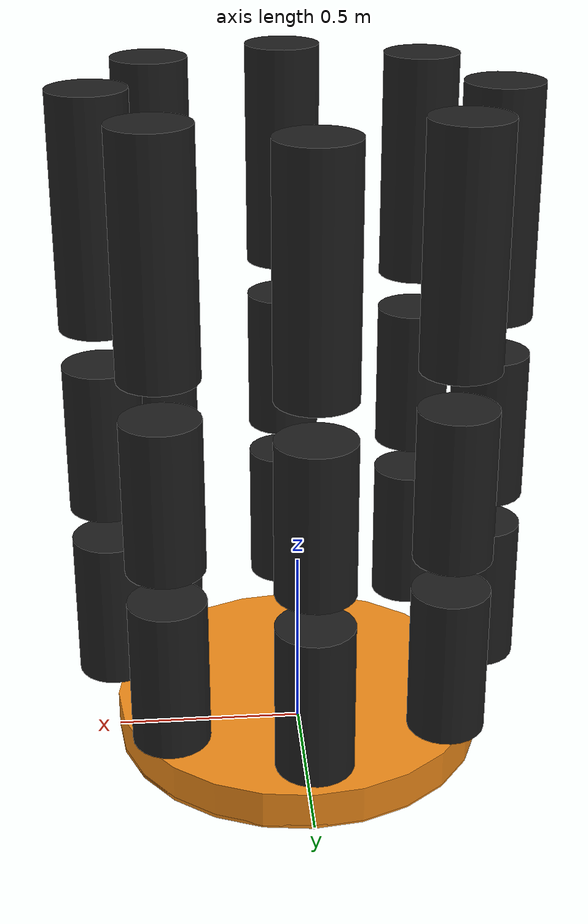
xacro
<?xml version="1.0"?>
<!-- Octapod -->
<robot xmlns:xacro="http://www.ros.org/wiki/xacro" name="spider">

  <!-- Constants for robot dimensions -->
  <xacro:property name="PI" value="3.1415926535897931"/>
  <xacro:property name="mass_chassis" value="0.4" /> <!-- arbitrary value for mass -->
  <xacro:property name="mass_link" value="0.1" /><!--quarter the mass of chassis -->
  <xacro:property name="mass_tactile" value="0.01" /> <!-- mass of the tactile dummy link -->
  <xacro:property name="radius_chassis" value="0.5" /> <!-- Square dimensions (widthxwidth) of beams -->
  <xacro:property name="height_chassis" value="0.1"/>  <!-- height of the cylinder that describes chasses -->
  <xacro:property name="radius_link" value="0.1" /> <!-- Link 1 -->
  <xacro:property name="height_link1_2" value="0.4" /> <!-- Link 2 -->
  <xacro:property name="height_link_1_2" value="0.4"/> <!--to adjust the error as I misspelled height_link1_2-->
  <xacro:property name="height_link_3" value="0.6" /> <!-- Link 3 -->
  <xacro:property name="axel_offset" value="0.01" /> <!-- Space btw top of beam and the each joint -->
  <xacro:property name="tactile_link" value="0.1"/><!--size of the tactile sensor-->
  <!-- Import all Gazebo-customization elements, including Gazebo colors -->
  <xacro:include filename="$(find spider_description)/urdf/spider.gazebo" />
  <!-- Import Rviz colors -->
  <xacro:include filename="$(find spider_description)/urdf/materials.xacro" />

  <!-- chassis -->
  <link name="chassis_dummy">
   <collision>
     <origin xyz="0 0 0" rpy="0 0 0"/>
      <geometry>
	<cylinder length="0.01" radius="${radius_chassis}"/>
      </geometry>
    </collision>

    <visual>
      <origin xyz="0 0 0" rpy="0 0 0"/>
      <geometry>
	<cylinder length="0.01" radius="${radius_chassis}"/>
        <!--mesh filename="package://spider_description/meshes/chassis_upper.dae"/ -->
      </geometry>
      <material name="orange"/>
    </visual>

    <inertial>
      <origin xyz="0 0 0" rpy="0 0 0"/>
      <mass value="${mass_chassis}"/>
      <inertia
	  ixx="${(mass_chassis*(3*(radius_chassis)**2+(height_chassis)**2))/2}" ixy="0.0" ixz="0.0"
	  iyy="${(mass_chassis*(3*(radius_chassis)**2+(height_chassis)**2))/2}" iyz="0.0"
	  izz="${(mass_chassis*(radius_chassis)**2)/2}"/>
    </inertial>

  </link>

  <link name="chassis">
    <collision>
      <origin xyz="0 0 ${height_chassis/2}" rpy="0 0 0"/>
      <geometry>
      	<cylinder length="${height_chassis}" radius="${radius_chassis}"/>
      </geometry>
      <surface>
       <contact>
        <collide_bitmask>0x001</collide_bitmask>
       </contact>
      </surface>
    </collision>

    <visual>
      <origin xyz="0 0 ${height_chassis/2}" rpy="0 0 0"/>
      <geometry>
	<cylinder length="${height_chassis}" radius="${radius_chassis}"/>
        <mesh filename="package://spider_description/meshes/chassis_upper.dae"/>
      </geometry>
      <material name="orange"/>
    </visual>

  </link>

  <joint name="joint_1" type="fixed">
    <parent link="chassis"/>
    <child link="chassis_dummy"/>
  </joint>

  <joint name="joint_1_1" type="revolute">
    <parent link="chassis"/>
    <child link="left_torso_1_1"/>
    <origin xyz="0 ${radius_chassis} ${height_chassis}" rpy="0 0 0"/>
    <axis xyz="0 0 1"/>
    <dynamics damping="0.7" friction="0.0"/>
    <limit effort="30" velocity="10.0" lower="-3.14" upper="3.14" />
    <safety_controller k_velocity="10" k_position="15" soft_lower_limit="-2.0" soft_upper_limit="2.5" />
  </joint>

  <!-- left_torso_1_1 -->
  <link name="left_torso_1_1">
    <collision>
      <origin xyz="0 0 ${height_chassis + 20*axel_offset}" rpy="0 0 0"/>
      <geometry>
	<cylinder length="${height_link_1_2}" radius="${radius_link}"/>
      </geometry>
      <surface>
       <contact>
        <collide_bitmask>0x010</collide_bitmask>
       </contact>
      </surface>
    </collision>

    <visual>
      <origin xyz="0 0 ${height_chassis + 20*axel_offset}" rpy="0 0 0"/>
      <geometry>
	<cylinder length="${height_link_1_2}" radius="${radius_link}"/>
      </geometry>
      <material name="black"/>
    </visual>

    <inertial>
      <origin xyz="0 0 ${height_chassis + 20*axel_offset}" rpy="0 0 0"/>
      <mass value="${mass_link}"/>
      <inertia
	  ixx="${(mass_link*(3*(radius_link)**2+(height_link_1_2)**2))/2}" ixy="0.0" ixz="0.0"
	  iyy="${(mass_link*(3*(radius_link)**2+(height_link_1_2)**2))/2}" iyz="0.0"
	  izz="${(mass_chassis*(radius_link)**2)/2}"/>
    </inertial>
  </link>

  <joint name="joint_1_2" type="revolute">
    <parent link="left_torso_1_1"/>
    <child link="left_torso_1_2"/>
    <origin xyz="0 0 ${height_link1_2}" rpy="0 0 0"/>
    <axis xyz="0 1 0"/>
    <dynamics damping="0.7" friction="0.0"/>
    <limit effort="30" velocity="10.0" lower="-3.14" upper="3.14" />
    <safety_controller k_velocity="10" k_position="15" soft_lower_limit="-2.0" soft_upper_limit="2.5" />
  </joint>

  <!-- left_torso_1_2-->
  <link name="left_torso_1_2">
    <collision>
      <origin xyz="0 0 ${height_link1_2 - axel_offset}" rpy="0 0 0"/>
      <geometry>
	<cylinder length="${height_link1_2}" radius="${radius_link}"/>
      </geometry>
      <surface>
       <contact>
        <collide_bitmask>0x011</collide_bitmask>
       </contact>
      </surface>
    </collision>

    <visual>
      <origin xyz="0 0 ${height_link1_2 - axel_offset}" rpy="0 0 0"/>
      <geometry>
	<cylinder length="${height_link1_2}" radius="${radius_link}"/>
      </geometry>
      <material name="black"/>
    </visual>

    <inertial>
      <origin xyz="0 0 ${height_link1_2 - axel_offset}" rpy="0 0 0"/>
      <mass value="${mass_link}"/>
      <inertia
	  ixx="${(mass_link*(3*(radius_link)**2+(height_link_1_2)**2))/2}" ixy="0.0" ixz="0.0"
	  iyy="${(mass_link*(3*(radius_link)**2+(height_link_1_2)**2))/2}" iyz="0.0"
	  izz="${(mass_chassis*(radius_link)**2)/2}"/>
    </inertial>
  </link>

  <joint name="joint_1_3" type="revolute">
    <parent link="left_torso_1_2"/>
    <child link="left_torso_1_3"/>
    <origin xyz="0 0 ${height_link1_2}" rpy="0 0 0"/>
    <axis xyz="0 1 0"/>
    <dynamics damping="0.7" friction="0.0"/>
    <limit effort="30" velocity="10.0" lower="-3.14" upper="3.14" />
    <safety_controller k_velocity="10" k_position="15" soft_lower_limit="-2.0" soft_upper_limit="2.5" />
  </joint>

  <!-- left_torso_1_3 -->
  <link name="left_torso_1_3">
    <collision>
      <origin xyz="0 0 ${height_link_3 - axel_offset}" rpy="0 0 0"/>
      <geometry>
	<cylinder length="${height_link_3}" radius="${radius_link}"/>
      </geometry>
      <surface>
       <contact>
        <collide_bitmask>0x100</collide_bitmask>
       </contact>
      </surface>
    </collision>

    <visual>
      <origin xyz="0 0 ${height_link_3 - axel_offset}" rpy="0 0 0"/>
      <geometry>
	<cylinder length="${height_link_3}" radius="${radius_link}"/>
      </geometry>
      <material name="black"/>
    </visual>

    <inertial>
      <origin xyz="0 0 ${height_link_3 - axel_offset}" rpy="0 0 0"/>
      <mass value="${mass_link}"/>
      <inertia
	  ixx="${(mass_link*(3*(radius_link)**2+(height_link_3)**2))/2}" ixy="0.0" ixz="0.0"
	  iyy="${(mass_link*(3*(radius_link)**2+(height_link_3)**2))/2}" iyz="0.0"
	  izz="${(mass_chassis*(radius_link)**2)/2}"/>
    </inertial>
  </link>

  <joint name="joint_2_1" type="revolute">
    <parent link="chassis"/>
    <child link="left_torso_2_1"/>
    <origin xyz="${-0.707*radius_chassis} ${0.707*radius_chassis} ${height_chassis}" rpy="0 0 0"/>
    <axis xyz="0 0 1"/>
    <dynamics damping="0.7" friction="0.0"/>
    <limit effort="30" velocity="10.0" lower="-3.14" upper="3.14" />
    <safety_controller k_velocity="10" k_position="15" soft_lower_limit="-2.0" soft_upper_limit="2.5" />
  </joint>

  <!-- Camera -->
  <link name="left_torso_2_1">
    <collision>
      <origin xyz="0 0 ${height_chassis + 20*axel_offset}" rpy="0 0 0"/>
      <geometry>
	<cylinder length="${height_link1_2}" radius="${radius_link}"/>
      </geometry>
      <surface>
       <contact>
        <collide_bitmask>0x010</collide_bitmask>
       </contact>
      </surface>
    </collision>

    <visual>
      <origin xyz="0 0 ${height_chassis + 20*axel_offset}" rpy="0 0 0"/>
      <geometry>
	<cylinder length="${height_link1_2}" radius="${radius_link}"/>
      </geometry>
      <material name="black"/>
    </visual>

    <inertial>
      <origin xyz="0 0 ${height_chassis + 20*axel_offset}" rpy="0 0 0"/>
      <mass value="${mass_link}"/>
      <inertia
	  ixx="${(mass_link*(3*(radius_link)**2+(height_link1_2)**2))/2}" ixy="0.0" ixz="0.0"
	  iyy="${(mass_link*(3*(radius_link)**2+(height_link1_2)**2))/2}" iyz="0.0"
	  izz="${(mass_chassis*(radius_link)**2)/2}"/>
    </inertial>
  </link>

  <joint name="joint_2_2" type="revolute">
    <parent link="left_torso_2_1"/>
    <child link="left_torso_2_2"/>
    <origin xyz="0 0 ${height_link1_2}" rpy="0 0 0"/>
    <axis xyz="0 1 0"/>
    <dynamics damping="0.7" friction="0.0"/>
    <limit effort="30" velocity="10.0" lower="-3.14" upper="3.14" />
    <safety_controller k_velocity="10" k_position="15" soft_lower_limit="-2.0" soft_upper_limit="2.5" />
  </joint>

  <!--left torso link 2_2-->
  <link name="left_torso_2_2">
    <collision>
      <origin xyz="0 0 ${height_link1_2 - axel_offset}" rpy="0 0 0"/>
      <geometry>
	<cylinder length="${height_link1_2}" radius="${radius_link}"/>
      </geometry>
      <surface>
       <contact>
        <collide_bitmask>0x011</collide_bitmask>
       </contact>
      </surface>
    </collision>

    <visual>
      <origin xyz="0 0 ${height_link1_2 - axel_offset}" rpy="0 0 0"/>
      <geometry>
	<cylinder length="${height_link1_2}" radius="${radius_link}"/>
      </geometry>
      <material name="black"/>
    </visual>

    <inertial>
      <origin xyz="0 0 ${height_link1_2 - axel_offset}" rpy="0 0 0"/>
      <mass value="${mass_link}"/>
      <inertia
	  ixx="${(mass_link*(3*(radius_link)**2+(height_link1_2)**2))/2}" ixy="0.0" ixz="0.0"
	  iyy="${(mass_link*(3*(radius_link)**2+(height_link1_2)**2))/2}" iyz="0.0"
	  izz="${(mass_chassis*(radius_link)**2)/2}"/>
    </inertial>
  </link>

  <joint name="joint_2_3" type="revolute">
    <parent link="left_torso_2_2"/>
    <child link="left_torso_2_3"/>
    <origin xyz="0 0 ${height_link1_2}" rpy="0 0 0"/>
    <axis xyz="0 1 0"/>
    <dynamics damping="0.7" friction="0.0"/>
    <limit effort="30" velocity="10.0" lower="-3.14" upper="3.14" />
    <safety_controller k_velocity="10" k_position="15" soft_lower_limit="-2.0" soft_upper_limit="2.5" />
  </joint>

  <!--left torso link 2_3-->
  <link name="left_torso_2_3">
    <collision>
      <origin xyz="0 0 ${height_link_3 - axel_offset}" rpy="0 0 0"/>
      <geometry>
	<cylinder length="${height_link_3}" radius="${radius_link}"/>
      </geometry>
      <surface>
       <contact>
        <collide_bitmask>0x100</collide_bitmask>
       </contact>
      </surface>
    </collision>

    <visual>
      <origin xyz="0 0 ${height_link_3 - axel_offset}" rpy="0 0 0"/>
      <geometry>
	<cylinder length="${height_link_3}" radius="${radius_link}"/>
      </geometry>
      <material name="black"/>
    </visual>

    <inertial>
      <origin xyz="0 0 ${height_link_3 - axel_offset}" rpy="0 0 0"/>
      <mass value="${mass_link}"/>
      <inertia
	  ixx="${(mass_link*(3*(radius_link)**2+(height_link_3)**2))/2}" ixy="0.0" ixz="0.0"
	  iyy="${(mass_link*(3*(radius_link)**2+(height_link_3)**2))/2}" iyz="0.0"
	  izz="${(mass_chassis*(radius_link)**2)/2}"/>
    </inertial>
  </link>

  <joint name="joint_3_1" type="revolute">
    <parent link="chassis"/>
    <child link="left_torso_3_1"/>
    <origin xyz="${-radius_chassis} 0 ${height_chassis}" rpy="0 0 0"/>
    <axis xyz="0 0 1"/>
    <dynamics damping="0.7" friction="0.0"/>
    <limit effort="30" velocity="10.0" lower="-3.14" upper="3.14" />
    <safety_controller k_velocity="10" k_position="15" soft_lower_limit="-2.0" soft_upper_limit="2.5" />
  </joint>

  <!--left torso link 3_1-->
   <link name="left_torso_3_1">
    <collision>
      <origin xyz="0 0 ${height_chassis + 20*axel_offset}" rpy="0 0 0"/>
      <geometry>
	<cylinder length="${height_link1_2}" radius="${radius_link}"/>
      </geometry>
      <surface>
       <contact>
        <collide_bitmask>0x010</collide_bitmask>
       </contact>
      </surface>
    </collision>

    <visual>
      <origin xyz="0 0 ${height_chassis + 20*axel_offset}" rpy="0 0 0"/>
      <geometry>
	<cylinder length="${height_link1_2}" radius="${radius_link}"/>
      </geometry>
      <material name="black"/>
    </visual>

    <inertial>
      <origin xyz="0 0 ${height_chassis + 20*axel_offset}" rpy="0 0 0"/>
      <mass value="${mass_link}"/>
      <inertia
	  ixx="${(mass_link*(3*(radius_link)**2+(height_link1_2)**2))/2}" ixy="0.0" ixz="0.0"
	  iyy="${(mass_link*(3*(radius_link)**2+(height_link1_2)**2))/2}" iyz="0.0"
	  izz="${(mass_chassis*(radius_link)**2)/2}"/>
    </inertial>
  </link>

  <joint name="joint_3_2" type="revolute">
    <parent link="left_torso_3_1"/>
    <child link="left_torso_3_2"/>
    <origin xyz="0 0 ${height_link1_2}" rpy="0 0 0"/>
    <axis xyz="0 1 0"/>
    <dynamics damping="0.7" friction="0.0"/>
    <limit effort="30" velocity="10.0" lower="-3.14" upper="3.14" />
    <safety_controller k_velocity="10" k_position="15" soft_lower_limit="-2.0" soft_upper_limit="2.5" />
  </joint>

  <link name="left_torso_3_2">
    <collision>
      <origin xyz="0 0 ${height_link1_2 - axel_offset}" rpy="0 0 0"/>
      <geometry>
	<cylinder length="${height_link1_2}" radius="${radius_link}"/>
      </geometry>
      <surface>
       <contact>
        <collide_bitmask>0x011</collide_bitmask>
       </contact>
      </surface>
    </collision>

    <visual>
      <origin xyz="0 0 ${height_link1_2 - axel_offset}" rpy="0 0 0"/>
      <geometry>
	<cylinder length="${height_link1_2}" radius="${radius_link}"/>
      </geometry>
      <material name="black"/>
    </visual>

    <inertial>
      <origin xyz="0 0 ${height_link1_2 - axel_offset}" rpy="0 0 0"/>
      <mass value="${mass_link}"/>
      <inertia
	  ixx="${(mass_link*(3*(radius_link)**2+(height_link1_2)**2))/2}" ixy="0.0" ixz="0.0"
	  iyy="${(mass_link*(3*(radius_link)**2+(height_link1_2)**2))/2}" iyz="0.0"
	  izz="${(mass_chassis*(radius_link)**2)/2}"/>
    </inertial>
  </link>

  <joint name="joint_3_3" type="revolute">
    <parent link="left_torso_3_2"/>
    <child link="left_torso_3_3"/>
    <origin xyz="0 0 ${height_link_1_2}" rpy="0 0 0"/>
    <axis xyz="0 1 0"/>
    <dynamics damping="0.7" friction="0.0"/>
    <limit effort="30" velocity="10.0" lower="-3.14" upper="3.14" />
    <safety_controller k_velocity="10" k_position="15" soft_lower_limit="-2.0" soft_upper_limit="2.5" />
  </joint>

  <link name="left_torso_3_3">
    <collision>
      <origin xyz="0 0 ${height_link_3 - axel_offset}" rpy="0 0 0"/>
      <geometry>
	<cylinder length="${height_link_3}" radius="${radius_link}"/>
      </geometry>
      <surface>
       <contact>
        <collide_bitmask>0x100</collide_bitmask>
       </contact>
      </surface>
    </collision>

    <visual>
      <origin xyz="0 0 ${height_link_3 - axel_offset}" rpy="0 0 0"/>
      <geometry>
	<cylinder length="${height_link_3}" radius="${radius_link}"/>
      </geometry>
      <material name="black"/>
    </visual>

    <inertial>
      <origin xyz="0 0 ${height_link_3 - axel_offset}" rpy="0 0 0"/>
      <mass value="${mass_link}"/>
      <inertia
	  ixx="${(mass_link*(3*(radius_link)**2+(height_link_3)**2))/2}" ixy="0.0" ixz="0.0"
	  iyy="${(mass_link*(3*(radius_link)**2+(height_link_3)**2))/2}" iyz="0.0"
	  izz="${(mass_chassis*(radius_link)**2)/2}"/>
    </inertial>
  </link>

  <!-- left torso link 4-->
  <joint name="joint_4_1" type="revolute">
    <parent link="chassis"/>
    <child link="left_torso_4_1"/>
    <origin xyz="${-0.707*radius_chassis} ${-0.707*radius_chassis} ${height_chassis}" rpy="0 0 0"/>
    <axis xyz="0 0 1"/>
    <dynamics damping="0.7" friction="0.0"/>
    <limit effort="30" velocity="10.0" lower="-3.14" upper="3.14" />
    <safety_controller k_velocity="10" k_position="15" soft_lower_limit="-2.0" soft_upper_limit="2.5" />
  </joint>

  <link name="left_torso_4_1">
    <collision>
      <origin xyz="0 0 ${height_chassis + 20*axel_offset}" rpy="0 0 0"/>
      <geometry>
	<cylinder length="${height_link_1_2}" radius="${radius_link}"/>
      </geometry>
      <surface>
       <contact>
        <collide_bitmask>0x010</collide_bitmask>
       </contact>
      </surface>
    </collision>

    <visual>
      <origin xyz="0 0 ${height_chassis + 20*axel_offset}" rpy="0 0 0"/>
      <geometry>
	<cylinder length="${height_link_1_2}" radius="${radius_link}"/>
      </geometry>
      <material name="black"/>
    </visual>

    <inertial>
      <origin xyz="0 0 ${height_chassis + 20*axel_offset}" rpy="0 0 0"/>
      <mass value="${mass_link}"/>
      <inertia
	  ixx="${(mass_link*(3*(radius_link)**2+(height_link_1_2)**2))/2}" ixy="0.0" ixz="0.0"
	  iyy="${(mass_link*(3*(radius_link)**2+(height_link_1_2)**2))/2}" iyz="0.0"
	  izz="${(mass_chassis*(radius_link)**2)/2}"/>
    </inertial>
  </link>

  <joint name="joint_4_2" type="revolute">
    <parent link="left_torso_4_1"/>
    <child link="left_torso_4_2"/>
    <origin xyz="0 0 ${height_link_1_2}" rpy="0 0 0"/>
    <axis xyz="0 1 0"/>
    <dynamics damping="0.7" friction="0.0"/>
    <limit effort="30" velocity="10.0" lower="-3.14" upper="3.14" />
    <safety_controller k_velocity="10" k_position="15" soft_lower_limit="-2.0" soft_upper_limit="2.5" />
  </joint>

  <link name="left_torso_4_2">
    <collision>
      <origin xyz="0 0 ${height_link_1_2 - axel_offset}" rpy="0 0 0"/>
      <geometry>
	<cylinder length="${height_link_1_2}" radius="${radius_link}"/>
      </geometry>
      <surface>
       <contact>
        <collide_bitmask>0x011</collide_bitmask>
       </contact>
      </surface>
    </collision>

    <visual>
      <origin xyz="0 0 ${height_link_1_2 - axel_offset}" rpy="0 0 0"/>
      <geometry>
	<cylinder length="${height_link_1_2}" radius="${radius_link}"/>
      </geometry>
      <material name="black"/>
    </visual>

    <inertial>
      <origin xyz="0 0 ${height_link1_2 - axel_offset}" rpy="0 0 0"/>
      <mass value="${mass_link}"/>
      <inertia
	  ixx="${(mass_link*(3*(radius_link)**2+(height_link_1_2)**2))/2}" ixy="0.0" ixz="0.0"
	  iyy="${(mass_link*(3*(radius_link)**2+(height_link_1_2)**2))/2}" iyz="0.0"
	  izz="${(mass_chassis*(radius_link)**2)/2}"/>
    </inertial>
  </link>

  <joint name="joint_4_3" type="revolute">
    <parent link="left_torso_4_2"/>
    <child link="left_torso_4_3"/>
    <origin xyz="0 0 ${height_link_1_2}" rpy="0 0 0"/>
    <axis xyz="0 1 0"/>
    <dynamics damping="0.7" friction="0.0"/>
    <limit effort="30" velocity="10.0" lower="-3.14" upper="3.14" />
    <safety_controller k_velocity="10" k_position="15" soft_lower_limit="-2.0" soft_upper_limit="2.5" />
  </joint>

  <link name="left_torso_4_3">
    <collision>
      <origin xyz="0 0 ${height_link_3 - axel_offset}" rpy="0 0 0"/>
      <geometry>
	<cylinder length="${height_link_3}" radius="${radius_link}"/>
      </geometry>
      <surface>
       <contact>
        <collide_bitmask>0x100</collide_bitmask>
       </contact>
      </surface>
    </collision>

    <visual>
      <origin xyz="0 0 ${height_link_3 - axel_offset}" rpy="0 0 0"/>
      <geometry>
	<cylinder length="${height_link_3}" radius="${radius_link}"/>
      </geometry>
      <material name="black"/>
    </visual>

    <inertial>
      <origin xyz="0 0 ${height_link_3 - axel_offset}" rpy="0 0 0"/>
      <mass value="${mass_link}"/>
      <inertia
	  ixx="${(mass_link*(3*(radius_link)**2+(height_link_3)**2))/2}" ixy="0.0" ixz="0.0"
	  iyy="${(mass_link*(3*(radius_link)**2+(height_link_3)**2))/2}" iyz="0.0"
	  izz="${(mass_chassis*(radius_link)**2)/2}"/>
    </inertial>
  </link>

  <joint name="joint_5_1" type="revolute">
    <parent link="chassis"/>
    <child link="right_torso_1_1"/>
    <origin xyz="0 ${-radius_chassis} ${height_chassis}" rpy="0 0 0"/>
    <axis xyz="0 0 1"/>
    <dynamics damping="0.7" friction="0.0"/>
    <limit effort="30" velocity="10.0" lower="-3.14" upper="3.14" />
    <safety_controller k_velocity="10" k_position="15" soft_lower_limit="-2.0" soft_upper_limit="2.5" />
  </joint>

  <link name="right_torso_1_1">
    <collision>
      <origin xyz="0 0 ${height_chassis + 20*axel_offset}" rpy="0 0 0"/>
      <geometry>
	<cylinder length="${height_link_1_2}" radius="${radius_link}"/>
      </geometry>
      <surface>
       <contact>
        <collide_bitmask>0x010</collide_bitmask>
       </contact>
      </surface>
    </collision>

    <visual>
      <origin xyz="0 0 ${height_chassis + 20*axel_offset}" rpy="0 0 0"/>
      <geometry>
	<cylinder length="${height_link_1_2}" radius="${radius_link}"/>
      </geometry>
      <material name="black"/>
    </visual>

    <inertial>
      <origin xyz="0 0 ${height_chassis + 20*axel_offset}" rpy="0 0 0"/>
      <mass value="${mass_link}"/>
      <inertia
	  ixx="${(mass_link*(3*(radius_link)**2+(height_link_1_2)**2))/2}" ixy="0.0" ixz="0.0"
	  iyy="${(mass_link*(3*(radius_link)**2+(height_link_1_2)**2))/2}" iyz="0.0"
	  izz="${(mass_chassis*(radius_link)**2)/2}"/>
    </inertial>
  </link>

  <joint name="joint_5_2" type="revolute">
    <parent link="right_torso_1_1"/>
    <child link="right_torso_1_2"/>
    <origin xyz="0 0 ${height_link_1_2}" rpy="0 0 0"/>
    <axis xyz="0 1 0"/>
    <dynamics damping="0.7" friction="0.0"/>
    <limit effort="30" velocity="10.0" lower="-3.14" upper="3.14" />
    <safety_controller k_velocity="10" k_position="15" soft_lower_limit="-2.0" soft_upper_limit="2.5" />
  </joint>

  <link name="right_torso_1_2">
    <collision>
      <origin xyz="0 0 ${height_link1_2 - axel_offset}" rpy="0 0 0"/>
      <geometry>
	<cylinder length="${height_link_1_2}" radius="${radius_link}"/>
      </geometry>
      <surface>
       <contact>
        <collide_bitmask>0x011</collide_bitmask>
       </contact>
      </surface>
    </collision>

    <visual>
      <origin xyz="0 0 ${height_link_1_2 - axel_offset}" rpy="0 0 0"/>
      <geometry>
	<cylinder length="${height_link_1_2}" radius="${radius_link}"/>
      </geometry>
      <material name="black"/>
    </visual>

    <inertial>
      <origin xyz="0 0 ${height_link_1_2 - axel_offset}" rpy="0 0 0"/>
      <mass value="${mass_link}"/>
      <inertia
	  ixx="${(mass_link*(3*(radius_link)**2+(height_link_1_2)**2))/2}" ixy="0.0" ixz="0.0"
	  iyy="${(mass_link*(3*(radius_link)**2+(height_link_1_2)**2))/2}" iyz="0.0"
	  izz="${(mass_chassis*(radius_link)**2)/2}"/>
    </inertial>
  </link>

  <joint name="joint_5_3" type="revolute">
    <parent link="right_torso_1_2"/>
    <child link="right_torso_1_3"/>
    <origin xyz="0 0 ${height_link_1_2}" rpy="0 0 0"/>
    <axis xyz="0 1 0"/>
    <dynamics damping="0.7" friction="0.0"/>
    <limit effort="30" velocity="10.0" lower="-3.14" upper="3.14" />
    <safety_controller k_velocity="10" k_position="15" soft_lower_limit="-2.0" soft_upper_limit="2.5" />
  </joint>

   <link name="right_torso_1_3">
    <collision>
      <origin xyz="0 0 ${height_link_3 - axel_offset}" rpy="0 0 0"/>
      <geometry>
	<cylinder length="${height_link_3}" radius="${radius_link}"/>
      </geometry>
      <surface>
       <contact>
        <collide_bitmask>0x100</collide_bitmask>
       </contact>
      </surface>
    </collision>

    <visual>
      <origin xyz="0 0 ${height_link_3 - axel_offset}" rpy="0 0 0"/>
      <geometry>
	<cylinder length="${height_link_3}" radius="${radius_link}"/>
      </geometry>
      <material name="black"/>
    </visual>

    <inertial>
      <origin xyz="0 0 ${height_link_3 - axel_offset}" rpy="0 0 0"/>
      <mass value="${mass_link}"/>
      <inertia
	  ixx="${(mass_link*(3*(radius_link)**2+(height_link_3)**2))/2}" ixy="0.0" ixz="0.0"
	  iyy="${(mass_link*(3*(radius_link)**2+(height_link_3)**2))/2}" iyz="0.0"
	  izz="${(mass_chassis*(radius_link)**2)/2}"/>
    </inertial>
  </link>

  <joint name="joint_6_1" type="revolute">
    <parent link="chassis"/>
    <child link="right_torso_2_1"/>
    <origin xyz="${0.707*radius_chassis} ${-0.707*radius_chassis} ${height_chassis}" rpy="0 0 0"/>
    <axis xyz="0 0 1"/>
    <dynamics damping="0.7" friction="0.0"/>
    <limit effort="30" velocity="10.0" lower="-3.14" upper="3.14" />
    <safety_controller k_velocity="10" k_position="15" soft_lower_limit="-2.0" soft_upper_limit="2.5" />
  </joint>

  <link name="right_torso_2_1">
    <collision>
      <origin xyz="0 0 ${height_chassis + 20*axel_offset}" rpy="0 0 0"/>
      <geometry>
	<cylinder length="${height_link_1_2}" radius="${radius_link}"/>
      </geometry>
      <surface>
       <contact>
        <collide_bitmask>0x010</collide_bitmask>
       </contact>
      </surface>
    </collision>

    <visual>
      <origin xyz="0 0 ${height_chassis + 20*axel_offset}" rpy="0 0 0"/>
      <geometry>
	<cylinder length="${height_link_1_2}" radius="${radius_link}"/>
      </geometry>
      <material name="black"/>
    </visual>

    <inertial>
      <origin xyz="0 0 ${height_chassis + 20*axel_offset}" rpy="0 0 0"/>
      <mass value="${mass_link}"/>
      <inertia
	  ixx="${(mass_link*(3*(radius_link)**2+(height_link_1_2)**2))/2}" ixy="0.0" ixz="0.0"
	  iyy="${(mass_link*(3*(radius_link)**2+(height_link_1_2)**2))/2}" iyz="0.0"
	  izz="${(mass_chassis*(radius_link)**2)/2}"/>
    </inertial>
  </link>

  <joint name="joint_6_2" type="revolute">
    <parent link="right_torso_2_1"/>
    <child link="right_torso_2_2"/>
    <origin xyz="0 0 ${height_link_1_2}" rpy="0 0 0"/>
    <axis xyz="0 1 0"/>
    <dynamics damping="0.7" friction="0.0"/>
    <limit effort="30" velocity="10.0" lower="-3.14" upper="3.14" />
    <safety_controller k_velocity="10" k_position="15" soft_lower_limit="-2.0" soft_upper_limit="2.5" />
  </joint>

  <link name="right_torso_2_2">
    <collision>
      <origin xyz="0 0 ${height_link_1_2 - axel_offset}" rpy="0 0 0"/>
      <geometry>
	<cylinder length="${height_link_1_2}" radius="${radius_link}"/>
      </geometry>
      <surface>
       <contact>
        <collide_bitmask>0x011</collide_bitmask>
       </contact>
      </surface>
    </collision>

    <visual>
      <origin xyz="0 0 ${height_link_1_2 - axel_offset}" rpy="0 0 0"/>
      <geometry>
	<cylinder length="${height_link_1_2}" radius="${radius_link}"/>
      </geometry>
      <material name="black"/>
    </visual>

    <inertial>
      <origin xyz="0 0 ${height_link_1_2 - axel_offset}" rpy="0 0 0"/>
      <mass value="${mass_link}"/>
      <inertia
	  ixx="${(mass_link*(3*(radius_link)**2+(height_link_1_2)**2))/2}" ixy="0.0" ixz="0.0"
	  iyy="${(mass_link*(3*(radius_link)**2+(height_link_1_2)**2))/2}" iyz="0.0"
	  izz="${(mass_chassis*(radius_link)**2)/2}"/>
    </inertial>
  </link>

  <joint name="joint_6_3" type="revolute">
    <parent link="right_torso_2_2"/>
    <child link="right_torso_2_3"/>
    <origin xyz="0 0 ${height_link_1_2}" rpy="0 0 0"/>
    <axis xyz="0 1 0"/>
    <dynamics damping="0.7" friction="0.0"/>
    <limit effort="30" velocity="10.0" lower="-3.14" upper="3.14" />
    <safety_controller k_velocity="10" k_position="15" soft_lower_limit="-2.0" soft_upper_limit="2.5" />
  </joint>

  <link name="right_torso_2_3">
    <collision>
      <origin xyz="0 0 ${height_link_3 - axel_offset}" rpy="0 0 0"/>
      <geometry>
	<cylinder length="${height_link_3}" radius="${radius_link}"/>
      </geometry>
      <surface>
       <contact>
        <collide_bitmask>0x100</collide_bitmask>
       </contact>
      </surface>
    </collision>

    <visual>
      <origin xyz="0 0 ${height_link_3 - axel_offset}" rpy="0 0 0"/>
      <geometry>
	<cylinder length="${height_link_3}" radius="${radius_link}"/>
      </geometry>
      <material name="black"/>
    </visual>

    <inertial>
      <origin xyz="0 0 ${height_link_3 - axel_offset}" rpy="0 0 0"/>
      <mass value="${mass_link}"/>
      <inertia
	  ixx="${(mass_link*(3*(radius_link)**2+(height_link_3)**2))/2}" ixy="0.0" ixz="0.0"
	  iyy="${(mass_link*(3*(radius_link)**2+(height_link_3)**2))/2}" iyz="0.0"
	  izz="${(mass_chassis*(radius_link)**2)/2}"/>
    </inertial>
  </link>

  <joint name="joint_7_1" type="revolute">
    <parent link="chassis"/>
    <child link="right_torso_3_1"/>
    <origin xyz="${radius_chassis} 0 ${height_chassis}" rpy="0 0 0"/>
    <axis xyz="0 0 1"/>
    <dynamics damping="0.7" friction="0.0"/>
    <limit effort="30" velocity="10.0" lower="-3.14" upper="3.14" />
    <safety_controller k_velocity="10" k_position="15" soft_lower_limit="-2.0" soft_upper_limit="2.5" />
  </joint>

  <link name="right_torso_3_1">
    <collision>
      <origin xyz="0 0 ${height_chassis + 20*axel_offset}" rpy="0 0 0"/>
      <geometry>
	<cylinder length="${height_link_1_2}" radius="${radius_link}"/>
      </geometry>
      <surface>
       <contact>
        <collide_bitmask>0x010</collide_bitmask>
       </contact>
      </surface>
    </collision>

    <visual>
      <origin xyz="0 0 ${height_chassis + 20*axel_offset}" rpy="0 0 0"/>
      <geometry>
	<cylinder length="${height_link_1_2}" radius="${radius_link}"/>
      </geometry>
      <material name="black"/>
    </visual>

    <inertial>
      <origin xyz="0 0 ${height_chassis + 20*axel_offset}" rpy="0 0 0"/>
      <mass value="${mass_link}"/>
      <inertia
	  ixx="${(mass_link*(3*(radius_link)**2+(height_link_1_2)**2))/2}" ixy="0.0" ixz="0.0"
	  iyy="${(mass_link*(3*(radius_link)**2+(height_link_1_2)**2))/2}" iyz="0.0"
	  izz="${(mass_chassis*(radius_link)**2)/2}"/>
    </inertial>
  </link>

  <joint name="joint_7_2" type="revolute">
    <parent link="right_torso_3_1"/>
    <child link="right_torso_3_2"/>
    <origin xyz="0 0 ${height_link_1_2}" rpy="0 0 0"/>
    <axis xyz="0 1 0"/>
    <dynamics damping="0.7" friction="0.0"/>
    <limit effort="30" velocity="10.0" lower="-3.14" upper="3.14" />
    <safety_controller k_velocity="10" k_position="15" soft_lower_limit="-2.0" soft_upper_limit="2.5" />
  </joint>

  <link name="right_torso_3_2">
    <collision>
      <origin xyz="0 0 ${height_link_1_2 - axel_offset}" rpy="0 0 0"/>
      <geometry>
	<cylinder length="${height_link_1_2}" radius="${radius_link}"/>
      </geometry>
      <surface>
       <contact>
        <collide_bitmask>0x011</collide_bitmask>
       </contact>
      </surface>
    </collision>

    <visual>
      <origin xyz="0 0 ${height_link_1_2 - axel_offset}" rpy="0 0 0"/>
      <geometry>
	<cylinder length="${height_link_1_2}" radius="${radius_link}"/>
      </geometry>
      <material name="black"/>
    </visual>

    <inertial>
      <origin xyz="0 0 ${height_link_1_2 - axel_offset}" rpy="0 0 0"/>
      <mass value="${mass_link}"/>
      <inertia
	  ixx="${(mass_link*(3*(radius_link)**2+(height_link_1_2)**2))/2}" ixy="0.0" ixz="0.0"
	  iyy="${(mass_link*(3*(radius_link)**2+(height_link_1_2)**2))/2}" iyz="0.0"
	  izz="${(mass_chassis*(radius_link)**2)/2}"/>
    </inertial>
  </link>

  <joint name="joint_7_3" type="revolute">
    <parent link="right_torso_3_2"/>
    <child link="right_torso_3_3"/>
    <origin xyz="0 0 ${height_link_1_2}" rpy="0 0 0"/>
    <axis xyz="0 1 0"/>
    <dynamics damping="0.7" friction="0.0"/>
    <limit effort="30" velocity="10.0" lower="-3.14" upper="3.14" />
    <safety_controller k_velocity="10" k_position="15" soft_lower_limit="-2.0" soft_upper_limit="2.5" />
  </joint>

  <link name="right_torso_3_3">
    <collision>
      <origin xyz="0 0 ${height_link_3 - axel_offset}" rpy="0 0 0"/>
      <geometry>
	<cylinder length="${height_link_3}" radius="${radius_link}"/>
      </geometry>
      <surface>
       <contact>
        <collide_bitmask>0x100</collide_bitmask>
       </contact>
      </surface>
    </collision>

    <visual>
      <origin xyz="0 0 ${height_link_3 - axel_offset}" rpy="0 0 0"/>
      <geometry>
	<cylinder length="${height_link_3}" radius="${radius_link}"/>
      </geometry>
      <material name="black"/>
    </visual>

    <inertial>
      <origin xyz="0 0 ${height_link_3 - axel_offset}" rpy="0 0 0"/>
      <mass value="${mass_link}"/>
      <inertia
	  ixx="${(mass_link*(3*(radius_link)**2+(height_link_3)**2))/2}" ixy="0.0" ixz="0.0"
	  iyy="${(mass_link*(3*(radius_link)**2+(height_link_3)**2))/2}" iyz="0.0"
	  izz="${(mass_chassis*(radius_link)**2)/2}"/>
    </inertial>
  </link>

  <joint name="joint_8_1" type="revolute">
    <parent link="chassis"/>
    <child link="right_torso_4_1"/>
    <origin xyz="${0.707*radius_chassis} ${0.707*radius_chassis} ${height_chassis}" rpy="0 0 0"/>
    <axis xyz="0 0 1"/>
    <dynamics damping="0.7" friction="0.0"/>
    <limit effort="30" velocity="10.0" lower="-3.14" upper="3.14" />
    <safety_controller k_velocity="10" k_position="15" soft_lower_limit="-2.0" soft_upper_limit="2.5" />
  </joint>

  <link name="right_torso_4_1">
    <collision>
      <origin xyz="0 0 ${height_chassis + 20*axel_offset}" rpy="0 0 0"/>
      <geometry>
	<cylinder length="${height_link_1_2}" radius="${radius_link}"/>
      </geometry>
      <surface>
       <contact>
        <collide_bitmask>0x010</collide_bitmask>
       </contact>
      </surface>
    </collision>

    <visual>
      <origin xyz="0 0 ${height_chassis  + 20*axel_offset}" rpy="0 0 0"/>
      <geometry>
	<cylinder length="${height_link_1_2}" radius="${radius_link}"/>
      </geometry>
      <material name="black"/>
    </visual>

    <inertial>
      <origin xyz="0 0 ${height_chassis + 20*axel_offset}" rpy="0 0 0"/>
      <mass value="${mass_link}"/>
      <inertia
	  ixx="${(mass_link*(3*(radius_link)**2+(height_link_1_2)**2))/2}" ixy="0.0" ixz="0.0"
	  iyy="${(mass_link*(3*(radius_link)**2+(height_link_1_2)**2))/2}" iyz="0.0"
	  izz="${(mass_chassis*(radius_link)**2)/2}"/>
    </inertial>
  </link>

  <joint name="joint_8_2" type="revolute">
    <parent link="right_torso_4_1"/>
    <child link="right_torso_4_2"/>
    <origin xyz="0 0 ${height_link_1_2}" rpy="0 0 0"/>
    <axis xyz="0 1 0"/>
    <dynamics damping="0.7" friction="0.0"/>
    <limit effort="30" velocity="10.0" lower="-3.14" upper="3.14" />
    <safety_controller k_velocity="10" k_position="15" soft_lower_limit="-2.0" soft_upper_limit="2.5" />
  </joint>

   <link name="right_torso_4_2">
    <collision>
      <origin xyz="0 0 ${height_link_1_2 - axel_offset}" rpy="0 0 0"/>
      <geometry>
	<cylinder length="${height_link_1_2}" radius="${radius_link}"/>
      </geometry>
      <surface>
       <contact>
        <collide_bitmask>0x011</collide_bitmask>
       </contact>
      </surface>
    </collision>

    <visual>
      <origin xyz="0 0 ${height_link_1_2 - axel_offset}" rpy="0 0 0"/>
      <geometry>
	<cylinder length="${height_link_1_2}" radius="${radius_link}"/>
      </geometry>
      <material name="black"/>
    </visual>

    <inertial>
      <origin xyz="0 0 ${height_link_1_2 - axel_offset}" rpy="0 0 0"/>
      <mass value="${mass_link}"/>
      <inertia
	  ixx="${(mass_link*(3*(radius_link)**2+(height_link_1_2)**2))/2}" ixy="0.0" ixz="0.0"
	  iyy="${(mass_link*(3*(radius_link)**2+(height_link_1_2)**2))/2}" iyz="0.0"
	  izz="${(mass_chassis*(radius_link)**2)/2}"/>
    </inertial>
  </link>

  <joint name="joint_8_3" type="revolute">
    <parent link="right_torso_4_2"/>
    <child link="right_torso_4_3"/>
    <origin xyz="0 0 ${height_link_1_2}" rpy="0 0 0"/>
    <axis xyz="0 1 0"/>
    <dynamics damping="0.7" friction="0.0"/>
    <limit effort="30" velocity="10.0" lower="-3.14" upper="3.14" />
    <safety_controller k_velocity="10" k_position="15" soft_lower_limit="-2.0" soft_upper_limit="2.5" />
  </joint>

  <link name="right_torso_4_3">
    <collision>
      <origin xyz="0 0 ${height_link_3 - axel_offset}" rpy="0 0 0"/>
      <geometry>
	<cylinder length="${height_link_3}" radius="${radius_link}"/>
      </geometry>
      <surface>
       <contact>
        <collide_bitmask>0x100</collide_bitmask>
       </contact>
      </surface>
    </collision>

    <visual>
      <origin xyz="0 0 ${height_link_3 - axel_offset}" rpy="0 0 0"/>
      <geometry>
	<cylinder length="${height_link_3}" radius="${radius_link}"/>
      </geometry>
      <material name="black"/>
    </visual>

    <inertial>
      <origin xyz="0 0 ${height_link_3 - axel_offset}" rpy="0 0 0"/>
      <mass value="${mass_link}"/>
      <inertia
	  ixx="${(mass_link*(3*(radius_link)**2+(height_link_3)**2))/2}" ixy="0.0" ixz="0.0"
	  iyy="${(mass_link*(3*(radius_link)**2+(height_link_3)**2))/2}" iyz="0.0"
	  izz="${(mass_chassis*(radius_link)**2)/2}"/>
    </inertial>
  </link>

  <joint name="tactile_1" type="fixed">
    <parent link="left_torso_1_3"/>
    <child link="tactile_sensor_1"/>
    <origin xyz="0 0 ${height_link_1_2}" rpy="0 0 0"/>
  </joint>

  <link name="tactile_sensor_1">
    <collision>
      <origin xyz="0 0 0" rpy="0 0 0"/>
      <geometry>
    <box size="${tactile_link} ${tactile_link} ${tactile_link}"/>
      </geometry>
    </collision>

    <visual>
      <origin xyz="0 0 0" rpy="0 0 0"/>
      <geometry>
    <box size="${tactile_link} ${tactile_link} ${tactile_link}"/>
      </geometry>
      <material name="red"/>
    </visual>

    <inertial>
      <mass value="1" />
      <origin xyz="0 0 0" rpy="0 0 0"/>
      <inertia ixx="${(mass_tactile*(2*(tactile_link)**2))/12}" ixy="0" ixz="0" iyy="${(mass_tactile*(2*(tactile_link)**2))/12}" iyz="0" izz="${(mass_tactile*(2*(tactile_link)**2))/12}" />
    </inertial>
  </link>

  <joint name="tactile_2" type="fixed">
    <parent link="left_torso_2_3"/>
    <child link="tactile_sensor_2"/>
    <origin xyz="0 0 ${height_link_1_2}" rpy="0 0 0"/>
  </joint>

  <link name="tactile_sensor_2">
    <collision>
      <origin xyz="0 0 0" rpy="0 0 0"/>
      <geometry>
    <box size="${tactile_link} ${tactile_link} ${tactile_link}"/>
      </geometry>
    </collision>

    <visual>
      <origin xyz="0 0 0" rpy="0 0 0"/>
      <geometry>
    <box size="${tactile_link} ${tactile_link} ${tactile_link}"/>
      </geometry>
      <material name="red"/>
    </visual>

    <inertial>
      <mass value="1" />
      <origin xyz="0 0 0" rpy="0 0 0"/>
      <inertia ixx="${(mass_tactile*(2*(tactile_link)**2))/12}" ixy="0" ixz="0" iyy="${(mass_tactile*(2*(tactile_link)**2))/12}" iyz="0" izz="${(mass_tactile*(2*(tactile_link)**2))/12}" />
    </inertial>
  </link>

  <joint name="tactile_3" type="fixed">
    <parent link="left_torso_3_3"/>
    <child link="tactile_sensor_3"/>
    <origin xyz="0 0 ${height_link_1_2}" rpy="0 0 0"/>
  </joint>

  <link name="tactile_sensor_3">
    <collision>
      <origin xyz="0 0 0" rpy="0 0 0"/>
      <geometry>
    <box size="${tactile_link} ${tactile_link} ${tactile_link}"/>
      </geometry>
    </collision>

    <visual>
      <origin xyz="0 0 0" rpy="0 0 0"/>
      <geometry>
    <box size="${tactile_link} ${tactile_link} ${tactile_link}"/>
      </geometry>
      <material name="red"/>
    </visual>

    <inertial>
      <mass value="1" />
      <origin xyz="0 0 0" rpy="0 0 0"/>
      <inertia ixx="${(mass_tactile*(2*(tactile_link)**2))/12}" ixy="0" ixz="0" iyy="${(mass_tactile*(2*(tactile_link)**2))/12}" iyz="0" izz="${(mass_tactile*(2*(tactile_link)**2))/12}" />
    </inertial>
  </link>

  <joint name="tactile_4" type="fixed">
    <parent link="left_torso_4_3"/>
    <child link="tactile_sensor_4"/>
    <origin xyz="0 0 ${height_link_1_2}" rpy="0 0 0"/>
  </joint>

  <link name="tactile_sensor_4">
    <collision>
      <origin xyz="0 0 0" rpy="0 0 0"/>
      <geometry>
    <box size="${tactile_link} ${tactile_link} ${tactile_link}"/>
      </geometry>
    </collision>

    <visual>
      <origin xyz="0 0 0" rpy="0 0 0"/>
      <geometry>
    <box size="${tactile_link} ${tactile_link} ${tactile_link}"/>
      </geometry>
      <material name="red"/>
    </visual>

    <inertial>
      <mass value="1" />
      <origin xyz="0 0 0" rpy="0 0 0"/>
      <inertia ixx="${(mass_tactile*(2*(tactile_link)**2))/12}" ixy="0" ixz="0" iyy="${(mass_tactile*(2*(tactile_link)**2))/12}" iyz="0" izz="${(mass_tactile*(2*(tactile_link)**2))/12}" />
    </inertial>
  </link>

  <joint name="tactile_5" type="fixed">
    <parent link="right_torso_1_3"/>
    <child link="tactile_sensor_5"/>
    <origin xyz="0 0 ${height_link_1_2}" rpy="0 0 0"/>
  </joint>

  <link name="tactile_sensor_5">
    <collision>
      <origin xyz="0 0 0" rpy="0 0 0"/>
      <geometry>
    <box size="${tactile_link} ${tactile_link} ${tactile_link}"/>
      </geometry>
    </collision>

    <visual>
      <origin xyz="0 0 0" rpy="0 0 0"/>
      <geometry>
    <box size="${tactile_link} ${tactile_link} ${tactile_link}"/>
      </geometry>
      <material name="red"/>
    </visual>

    <inertial>
      <mass value="1" />
      <origin xyz="0 0 0" rpy="0 0 0"/>
      <inertia ixx="${(mass_tactile*(2*(tactile_link)**2))/12}" ixy="0" ixz="0" iyy="${(mass_tactile*(2*(tactile_link)**2))/12}" iyz="0" izz="${(mass_tactile*(2*(tactile_link)**2))/12}" />
    </inertial>
  </link>

  <joint name="tactile_6" type="fixed">
    <parent link="right_torso_2_3"/>
    <child link="tactile_sensor_6"/>
    <origin xyz="0 0 ${height_link_1_2}" rpy="0 0 0"/>
  </joint>

  <link name="tactile_sensor_6">
    <collision>
      <origin xyz="0 0 0" rpy="0 0 0"/>
      <geometry>
    <box size="${tactile_link} ${tactile_link} ${tactile_link}"/>
      </geometry>
    </collision>

    <visual>
      <origin xyz="0 0 0" rpy="0 0 0"/>
      <geometry>
    <box size="${tactile_link} ${tactile_link} ${tactile_link}"/>
      </geometry>
      <material name="red"/>
    </visual>

    <inertial>
      <mass value="1" />
      <origin xyz="0 0 0" rpy="0 0 0"/>
      <inertia ixx="${(mass_tactile*(2*(tactile_link)**2))/12}" ixy="0" ixz="0" iyy="${(mass_tactile*(2*(tactile_link)**2))/12}" iyz="0" izz="${(mass_tactile*(2*(tactile_link)**2))/12}" />
    </inertial>
  </link>

  <joint name="tactile_7" type="fixed">
    <parent link="right_torso_3_3"/>
    <child link="tactile_sensor_7"/>
    <origin xyz="0 0 ${height_link_1_2}" rpy="0 0 0"/>
  </joint>

  <link name="tactile_sensor_7">
    <collision>
      <origin xyz="0 0 0" rpy="0 0 0"/>
      <geometry>
    <box size="${tactile_link} ${tactile_link} ${tactile_link}"/>
      </geometry>
    </collision>

    <visual>
      <origin xyz="0 0 0" rpy="0 0 0"/>
      <geometry>
    <box size="${tactile_link} ${tactile_link} ${tactile_link}"/>
      </geometry>
      <material name="red"/>
    </visual>

    <inertial>
      <mass value="1" />
      <origin xyz="0 0 0" rpy="0 0 0"/>
      <inertia ixx="${(mass_tactile*(2*(tactile_link)**2))/12}" ixy="0" ixz="0" iyy="${(mass_tactile*(2*(tactile_link)**2))/12}" iyz="0" izz="${(mass_tactile*(2*(tactile_link)**2))/12}" />
    </inertial>
  </link>

  <joint name="tactile_8" type="fixed">
    <parent link="right_torso_4_3"/>
    <child link="tactile_sensor_8"/>
    <origin xyz="0 0 ${height_link_1_2}" rpy="0 0 0"/>
  </joint>

  <link name="tactile_sensor_8">
    <collision>
      <origin xyz="0 0 0" rpy="0 0 0"/>
      <geometry>
    <box size="${tactile_link} ${tactile_link} ${tactile_link}"/>
      </geometry>
    </collision>

    <visual>
      <origin xyz="0 0 0" rpy="0 0 0"/>
      <geometry>
    <box size="${tactile_link} ${tactile_link} ${tactile_link}"/>
      </geometry>
      <material name="red"/>
    </visual>

    <inertial>
      <mass value="1" />
      <origin xyz="0 0 0" rpy="0 0 0"/>
      <inertia ixx="${(mass_tactile*(2*(tactile_link)**2))/12}" ixy="0" ixz="0" iyy="${(mass_tactile*(2*(tactile_link)**2))/12}" iyz="0" izz="${(mass_tactile*(2*(tactile_link)**2))/12}" />
    </inertial>
  </link>

  <transmission name="tran1_1">
    <type>transmission_interface/SimpleTransmission</type>
    <joint name="joint_1_1">
      <hardwareInterface>PositionJointInterface</hardwareInterface>
    </joint>
    <actuator name="motor1_1">
      <mechanicalReduction>1</mechanicalReduction>
    </actuator>
  </transmission>

  <transmission name="tran1_2">
    <type>transmission_interface/SimpleTransmission</type>
    <joint name="joint_1_2">
      <hardwareInterface>PositionJointInterface</hardwareInterface>
    </joint>
    <actuator name="motor1_2">
      <mechanicalReduction>1</mechanicalReduction>
    </actuator>
  </transmission>

  <transmission name="tran1_3">
    <type>transmission_interface/SimpleTransmission</type>
    <joint name="joint_1_3">
      <hardwareInterface>PositionJointInterface</hardwareInterface>
    </joint>
    <actuator name="motor1_3">
      <mechanicalReduction>1</mechanicalReduction>
    </actuator>
  </transmission>

  <transmission name="tran2_1">
    <type>transmission_interface/SimpleTransmission</type>
    <joint name="joint_2_1">
      <hardwareInterface>PositionJointInterface</hardwareInterface>
    </joint>
    <actuator name="motor2_1">
      <mechanicalReduction>1</mechanicalReduction>
    </actuator>
  </transmission>

  <transmission name="tran2_2">
    <type>transmission_interface/SimpleTransmission</type>
    <joint name="joint_2_2">
      <hardwareInterface>PositionJointInterface</hardwareInterface>
    </joint>
    <actuator name="motor2_2">
      <mechanicalReduction>1</mechanicalReduction>
    </actuator>
  </transmission>

  <transmission name="tran2_3">
    <type>transmission_interface/SimpleTransmission</type>
    <joint name="joint_2_3">
      <hardwareInterface>PositionJointInterface</hardwareInterface>
    </joint>
    <actuator name="motor2_3">
      <mechanicalReduction>1</mechanicalReduction>
    </actuator>
  </transmission>

  <transmission name="tran3_1">
    <type>transmission_interface/SimpleTransmission</type>
    <joint name="joint_3_1">
      <hardwareInterface>PositionJointInterface</hardwareInterface>
    </joint>
    <actuator name="motor3_1">
      <mechanicalReduction>1</mechanicalReduction>
    </actuator>
  </transmission>

  <transmission name="tran3_2">
    <type>transmission_interface/SimpleTransmission</type>
    <joint name="joint_3_2">
      <hardwareInterface>PositionJointInterface</hardwareInterface>
    </joint>
    <actuator name="motor3_2">
      <mechanicalReduction>1</mechanicalReduction>
    </actuator>
  </transmission>

  <transmission name="tran3_3">
    <type>transmission_interface/SimpleTransmission</type>
    <joint name="joint_3_3">
      <hardwareInterface>PositionJointInterface</hardwareInterface>
    </joint>
    <actuator name="motor3_3">
      <mechanicalReduction>1</mechanicalReduction>
    </actuator>
  </transmission>

  <transmission name="tran4_1">
    <type>transmission_interface/SimpleTransmission</type>
    <joint name="joint_4_1">
      <hardwareInterface>PositionJointInterface</hardwareInterface>
    </joint>
    <actuator name="motor4_1">
      <mechanicalReduction>1</mechanicalReduction>
    </actuator>
  </transmission>

  <transmission name="tran4_2">
    <type>transmission_interface/SimpleTransmission</type>
    <joint name="joint_4_2">
      <hardwareInterface>PositionJointInterface</hardwareInterface>
    </joint>
    <actuator name="motor4_2">
      <mechanicalReduction>1</mechanicalReduction>
    </actuator>
  </transmission>

  <transmission name="tran4_3">
    <type>transmission_interface/SimpleTransmission</type>
    <joint name="joint_4_3">
      <hardwareInterface>PositionJointInterface</hardwareInterface>
    </joint>
    <actuator name="motor4_3">
      <mechanicalReduction>1</mechanicalReduction>
    </actuator>
  </transmission>

  <transmission name="tran5_1">
    <type>transmission_interface/SimpleTransmission</type>
    <joint name="joint_5_1">
      <hardwareInterface>PositionJointInterface</hardwareInterface>
    </joint>
    <actuator name="motor5_1">
      <mechanicalReduction>1</mechanicalReduction>
    </actuator>
  </transmission>

  <transmission name="tran5_2">
    <type>transmission_interface/SimpleTransmission</type>
    <joint name="joint_5_2">
      <hardwareInterface>PositionJointInterface</hardwareInterface>
    </joint>
    <actuator name="motor5_2">
      <mechanicalReduction>1</mechanicalReduction>
    </actuator>
  </transmission>

  <transmission name="tran5_3">
    <type>transmission_interface/SimpleTransmission</type>
    <joint name="joint_5_3">
      <hardwareInterface>PositionJointInterface</hardwareInterface>
    </joint>
    <actuator name="motor5_3">
     <mechanicalReduction>1</mechanicalReduction>
    </actuator>
  </transmission>

  <transmission name="tran6_1">
    <type>transmission_interface/SimpleTransmission</type>
    <joint name="joint_6_1">
      <hardwareInterface>PositionJointInterface</hardwareInterface>
    </joint>
    <actuator name="motor6_1">
      <mechanicalReduction>1</mechanicalReduction>
    </actuator>
  </transmission>

  <transmission name="tran6_2">
    <type>transmission_interface/SimpleTransmission</type>
    <joint name="joint_6_2">
      <hardwareInterface>PositionJointInterface</hardwareInterface>
    </joint>
    <actuator name="motor6_2">
      <mechanicalReduction>1</mechanicalReduction>
    </actuator>
  </transmission>

  <transmission name="tran6_3">
    <type>transmission_interface/SimpleTransmission</type>
    <joint name="joint_6_3">
      <hardwareInterface>PositionJointInterface</hardwareInterface>
    </joint>
    <actuator name="motor6_3">
      <mechanicalReduction>1</mechanicalReduction>
    </actuator>
  </transmission>

  <transmission name="tran7_1">
    <type>transmission_interface/SimpleTransmission</type>
    <joint name="joint_7_1">
      <hardwareInterface>PositionJointInterface</hardwareInterface>
    </joint>
    <actuator name="motor7_1">
      <mechanicalReduction>1</mechanicalReduction>
    </actuator>
  </transmission>

  <transmission name="tran7_2">
    <type>transmission_interface/SimpleTransmission</type>
    <joint name="joint_7_2">
      <hardwareInterface>PositionJointInterface</hardwareInterface>
    </joint>
    <actuator name="motor7_2">
      <mechanicalReduction>1</mechanicalReduction>
    </actuator>
  </transmission>

  <transmission name="tran7_3">
    <type>transmission_interface/SimpleTransmission</type>
    <joint name="joint_7_3">
      <hardwareInterface>PositionJointInterface</hardwareInterface>
    </joint>
    <actuator name="motor7_3">
      <mechanicalReduction>1</mechanicalReduction>
    </actuator>
  </transmission>

  <transmission name="tran8_1">
    <type>transmission_interface/SimpleTransmission</type>
    <joint name="joint_8_1">
      <hardwareInterface>PositionJointInterface</hardwareInterface>
    </joint>
    <actuator name="motor8_1">
      <mechanicalReduction>1</mechanicalReduction>
    </actuator>
  </transmission>

  <transmission name="tran8_2">
    <type>transmission_interface/SimpleTransmission</type>
    <joint name="joint_8_2">
      <hardwareInterface>PositionJointInterface</hardwareInterface>
    </joint>
    <actuator name="motor8_2">
      <mechanicalReduction>1</mechanicalReduction>
    </actuator>
  </transmission>

  <transmission name="tran8_3">
    <type>transmission_interface/SimpleTransmission</type>
    <joint name="joint_8_3">
      <hardwareInterface>PositionJointInterface</hardwareInterface>
    </joint>
    <actuator name="motor8_3">
     <mechanicalReduction>1</mechanicalReduction>
    </actuator>
  </transmission>

</robot>
